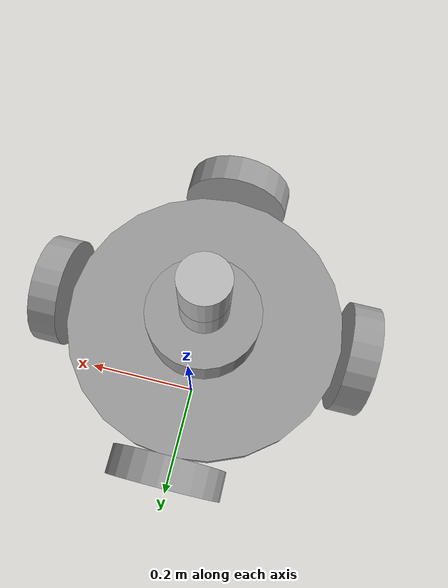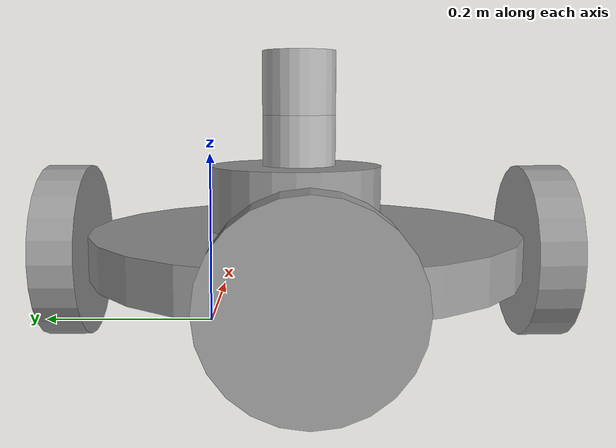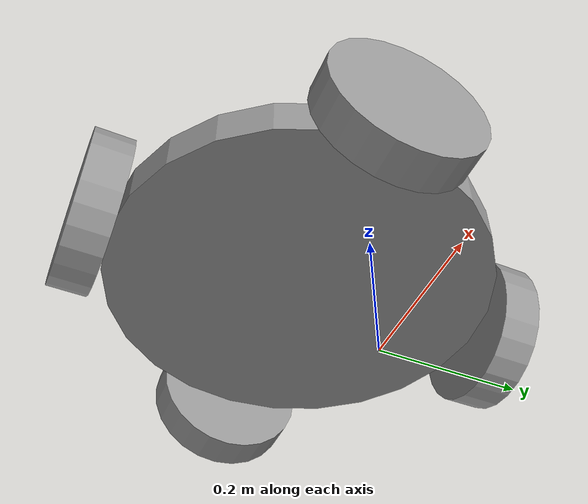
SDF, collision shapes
<?xml version='1.0'?>
<sdf version='1.6'>
  <model name='Platvorm_lidariga'>
    <link name='link_0'>
      <inertial>
        <mass>0.00510459</mass>
        <inertia>
          <ixx>1.987e-05</ixx>
          <ixy>0</ixy>
          <ixz>0</ixz>
          <iyy>1.987e-05</iyy>
          <iyz>0</iyz>
          <izz>2.906e-05</izz>
        </inertia>
        <pose frame=''>0 0 0 0 -0 0</pose>
      </inertial>
      <pose frame=''>0.000146 -0.385825 0.086886 -1.5757 0 0</pose>
      <gravity>1</gravity>
      <self_collide>0</self_collide>
      <kinematic>0</kinematic>
      <enable_wind>0</enable_wind>
      <visual name='visual'>
        <pose frame=''>0 0 0 0 -0 0</pose>
        <geometry>
          <cylinder>
            <radius>0.1</radius>
            <length>0.05</length>
          </cylinder>
        </geometry>
        <material>
          <lighting>1</lighting>
          <script>
            <uri>file://media/materials/scripts/gazebo.material</uri>
            <name>Gazebo/Grey</name>
          </script>
          <shader type='vertex'>
            <normal_map>__default__</normal_map>
          </shader>
          <ambient>0.3 0.3 0.3 1</ambient>
          <diffuse>0.7 0.7 0.7 1</diffuse>
          <specular>0.01 0.01 0.01 1</specular>
          <emissive>0 0 0 1</emissive>
        </material>
        <transparency>0</transparency>
        <cast_shadows>1</cast_shadows>
      </visual>
      <collision name='collision'>
        <laser_retro>0</laser_retro>
        <max_contacts>10</max_contacts>
        <pose frame=''>0 0 0 0 -0 0</pose>
        <geometry>
          <cylinder>
            <radius>0.1</radius>
            <length>0.05</length>
          </cylinder>
        </geometry>
        <surface>
          <friction>
            <ode>
              <mu>1</mu>
              <mu2>1</mu2>
              <fdir1>0 0 0</fdir1>
              <slip1>0</slip1>
              <slip2>0</slip2>
            </ode>
            <torsional>
              <coefficient>1</coefficient>
              <patch_radius>0</patch_radius>
              <surface_radius>0</surface_radius>
              <use_patch_radius>1</use_patch_radius>
              <ode>
                <slip>0</slip>
              </ode>
            </torsional>
          </friction>
          <bounce>
            <restitution_coefficient>0</restitution_coefficient>
            <threshold>1e+06</threshold>
          </bounce>
          <contact>
            <collide_without_contact>0</collide_without_contact>
            <collide_without_contact_bitmask>1</collide_without_contact_bitmask>
            <collide_bitmask>1</collide_bitmask>
            <ode>
              <soft_cfm>0</soft_cfm>
              <soft_erp>0.2</soft_erp>
              <kp>1e+13</kp>
              <kd>1</kd>
              <max_vel>0.01</max_vel>
              <min_depth>0</min_depth>
            </ode>
            <bullet>
              <split_impulse>1</split_impulse>
              <split_impulse_penetration_threshold>-0.01</split_impulse_penetration_threshold>
              <soft_cfm>0</soft_cfm>
              <soft_erp>0.2</soft_erp>
              <kp>1e+13</kp>
              <kd>1</kd>
            </bullet>
          </contact>
        </surface>
      </collision>
    </link>
    <link name='link_0_clone'>
      <inertial>
        <mass>0.00510459</mass>
        <inertia>
          <ixx>1.987e-05</ixx>
          <ixy>0</ixy>
          <ixz>0</ixz>
          <iyy>1.987e-05</iyy>
          <iyz>0</iyz>
          <izz>2.906e-05</izz>
        </inertia>
        <pose frame=''>0 0 0 0 -0 0</pose>
      </inertial>
      <pose frame=''>0.000146 0.164175 0.086886 -1.5757 0 0</pose>
      <gravity>1</gravity>
      <self_collide>0</self_collide>
      <kinematic>0</kinematic>
      <enable_wind>0</enable_wind>
      <visual name='visual'>
        <pose frame=''>0 0 0 0 -0 0</pose>
        <geometry>
          <cylinder>
            <radius>0.1</radius>
            <length>0.05</length>
          </cylinder>
        </geometry>
        <material>
          <lighting>1</lighting>
          <script>
            <uri>file://media/materials/scripts/gazebo.material</uri>
            <name>Gazebo/Grey</name>
          </script>
          <shader type='vertex'>
            <normal_map>__default__</normal_map>
          </shader>
          <ambient>0.3 0.3 0.3 1</ambient>
          <diffuse>0.7 0.7 0.7 1</diffuse>
          <specular>0.01 0.01 0.01 1</specular>
          <emissive>0 0 0 1</emissive>
        </material>
        <transparency>0</transparency>
        <cast_shadows>1</cast_shadows>
      </visual>
      <collision name='collision'>
        <laser_retro>0</laser_retro>
        <max_contacts>10</max_contacts>
        <pose frame=''>0 0 0 0 -0 0</pose>
        <geometry>
          <cylinder>
            <radius>0.1</radius>
            <length>0.05</length>
          </cylinder>
        </geometry>
        <surface>
          <friction>
            <ode>
              <mu>1</mu>
              <mu2>1</mu2>
              <fdir1>0 0 0</fdir1>
              <slip1>0</slip1>
              <slip2>0</slip2>
            </ode>
            <torsional>
              <coefficient>1</coefficient>
              <patch_radius>0</patch_radius>
              <surface_radius>0</surface_radius>
              <use_patch_radius>1</use_patch_radius>
              <ode>
                <slip>0</slip>
              </ode>
            </torsional>
          </friction>
          <bounce>
            <restitution_coefficient>0</restitution_coefficient>
            <threshold>1e+06</threshold>
          </bounce>
          <contact>
            <collide_without_contact>0</collide_without_contact>
            <collide_without_contact_bitmask>1</collide_without_contact_bitmask>
            <collide_bitmask>1</collide_bitmask>
            <ode>
              <soft_cfm>0</soft_cfm>
              <soft_erp>0.2</soft_erp>
              <kp>1e+13</kp>
              <kd>1</kd>
              <max_vel>0.01</max_vel>
              <min_depth>0</min_depth>
            </ode>
            <bullet>
              <split_impulse>1</split_impulse>
              <split_impulse_penetration_threshold>-0.01</split_impulse_penetration_threshold>
              <soft_cfm>0</soft_cfm>
              <soft_erp>0.2</soft_erp>
              <kp>1e+13</kp>
              <kd>1</kd>
            </bullet>
          </contact>
        </surface>
      </collision>
    </link>
    <link name='link_0_clone_0'>
      <inertial>
        <mass>0.00510459</mass>
        <inertia>
          <ixx>1.987e-05</ixx>
          <ixy>0</ixy>
          <ixz>0</ixz>
          <iyy>1.987e-05</iyy>
          <iyz>0</iyz>
          <izz>2.906e-05</izz>
        </inertia>
        <pose frame=''>0 0 0 0 -0 0</pose>
      </inertial>
      <pose frame=''>0.275146 -0.110825 0.086886 -1.5757 -0 1.57</pose>
      <gravity>1</gravity>
      <self_collide>0</self_collide>
      <kinematic>0</kinematic>
      <enable_wind>0</enable_wind>
      <visual name='visual'>
        <pose frame=''>0 0 0 0 -0 0</pose>
        <geometry>
          <cylinder>
            <radius>0.1</radius>
            <length>0.05</length>
          </cylinder>
        </geometry>
        <material>
          <lighting>1</lighting>
          <script>
            <uri>file://media/materials/scripts/gazebo.material</uri>
            <name>Gazebo/Grey</name>
          </script>
          <shader type='vertex'>
            <normal_map>__default__</normal_map>
          </shader>
          <ambient>0.3 0.3 0.3 1</ambient>
          <diffuse>0.7 0.7 0.7 1</diffuse>
          <specular>0.01 0.01 0.01 1</specular>
          <emissive>0 0 0 1</emissive>
        </material>
        <transparency>0</transparency>
        <cast_shadows>1</cast_shadows>
      </visual>
      <collision name='collision'>
        <laser_retro>0</laser_retro>
        <max_contacts>10</max_contacts>
        <pose frame=''>0 0 0 0 -0 0</pose>
        <geometry>
          <cylinder>
            <radius>0.1</radius>
            <length>0.05</length>
          </cylinder>
        </geometry>
        <surface>
          <friction>
            <ode>
              <mu>1</mu>
              <mu2>1</mu2>
              <fdir1>0 0 0</fdir1>
              <slip1>0</slip1>
              <slip2>0</slip2>
            </ode>
            <torsional>
              <coefficient>1</coefficient>
              <patch_radius>0</patch_radius>
              <surface_radius>0</surface_radius>
              <use_patch_radius>1</use_patch_radius>
              <ode>
                <slip>0</slip>
              </ode>
            </torsional>
          </friction>
          <bounce>
            <restitution_coefficient>0</restitution_coefficient>
            <threshold>1e+06</threshold>
          </bounce>
          <contact>
            <collide_without_contact>0</collide_without_contact>
            <collide_without_contact_bitmask>1</collide_without_contact_bitmask>
            <collide_bitmask>1</collide_bitmask>
            <ode>
              <soft_cfm>0</soft_cfm>
              <soft_erp>0.2</soft_erp>
              <kp>1e+13</kp>
              <kd>1</kd>
              <max_vel>0.01</max_vel>
              <min_depth>0</min_depth>
            </ode>
            <bullet>
              <split_impulse>1</split_impulse>
              <split_impulse_penetration_threshold>-0.01</split_impulse_penetration_threshold>
              <soft_cfm>0</soft_cfm>
              <soft_erp>0.2</soft_erp>
              <kp>1e+13</kp>
              <kd>1</kd>
            </bullet>
          </contact>
        </surface>
      </collision>
    </link>
    <link name='link_0_clone_0_clone'>
      <inertial>
        <mass>0.00510459</mass>
        <inertia>
          <ixx>1.987e-05</ixx>
          <ixy>0</ixy>
          <ixz>0</ixz>
          <iyy>1.987e-05</iyy>
          <iyz>0</iyz>
          <izz>2.906e-05</izz>
        </inertia>
        <pose frame=''>0 0 0 0 -0 0</pose>
      </inertial>
      <pose frame=''>-0.274854 -0.110825 0.086886 -1.5757 -0 1.57</pose>
      <gravity>1</gravity>
      <self_collide>0</self_collide>
      <kinematic>0</kinematic>
      <enable_wind>0</enable_wind>
      <visual name='visual'>
        <pose frame=''>0 0 0 0 -0 0</pose>
        <geometry>
          <cylinder>
            <radius>0.1</radius>
            <length>0.05</length>
          </cylinder>
        </geometry>
        <material>
          <lighting>1</lighting>
          <script>
            <uri>file://media/materials/scripts/gazebo.material</uri>
            <name>Gazebo/Grey</name>
          </script>
          <shader type='vertex'>
            <normal_map>__default__</normal_map>
          </shader>
          <ambient>0.3 0.3 0.3 1</ambient>
          <diffuse>0.7 0.7 0.7 1</diffuse>
          <specular>0.01 0.01 0.01 1</specular>
          <emissive>0 0 0 1</emissive>
        </material>
        <transparency>0</transparency>
        <cast_shadows>1</cast_shadows>
      </visual>
      <collision name='collision'>
        <laser_retro>0</laser_retro>
        <max_contacts>10</max_contacts>
        <pose frame=''>0 0 0 0 -0 0</pose>
        <geometry>
          <cylinder>
            <radius>0.1</radius>
            <length>0.05</length>
          </cylinder>
        </geometry>
        <surface>
          <friction>
            <ode>
              <mu>1</mu>
              <mu2>1</mu2>
              <fdir1>0 0 0</fdir1>
              <slip1>0</slip1>
              <slip2>0</slip2>
            </ode>
            <torsional>
              <coefficient>1</coefficient>
              <patch_radius>0</patch_radius>
              <surface_radius>0</surface_radius>
              <use_patch_radius>1</use_patch_radius>
              <ode>
                <slip>0</slip>
              </ode>
            </torsional>
          </friction>
          <bounce>
            <restitution_coefficient>0</restitution_coefficient>
            <threshold>1e+06</threshold>
          </bounce>
          <contact>
            <collide_without_contact>0</collide_without_contact>
            <collide_without_contact_bitmask>1</collide_without_contact_bitmask>
            <collide_bitmask>1</collide_bitmask>
            <ode>
              <soft_cfm>0</soft_cfm>
              <soft_erp>0.2</soft_erp>
              <kp>1e+13</kp>
              <kd>1</kd>
              <max_vel>0.01</max_vel>
              <min_depth>0</min_depth>
            </ode>
            <bullet>
              <split_impulse>1</split_impulse>
              <split_impulse_penetration_threshold>-0.01</split_impulse_penetration_threshold>
              <soft_cfm>0</soft_cfm>
              <soft_erp>0.2</soft_erp>
              <kp>1e+13</kp>
              <kd>1</kd>
            </bullet>
          </contact>
        </surface>
      </collision>
    </link>
    <link name='link_3'>
      <inertial>
        <mass>0.0302723</mass>
        <inertia>
          <ixx>0.00065661</ixx>
          <ixy>0</ixy>
          <ixz>0</ixz>
          <iyy>0.00065661</iyy>
          <iyz>0</iyz>
          <izz>0.00127232</izz>
        </inertia>
        <pose frame=''>0 0 0 0 -0 0</pose>
      </inertial>
      <pose frame=''>0.000146 -0.110825 0.086886 0 -0 0</pose>
      <gravity>1</gravity>
      <self_collide>0</self_collide>
      <kinematic>0</kinematic>
      <enable_wind>0</enable_wind>
      <visual name='visual'>
        <pose frame=''>0 0 0 0 -0 0</pose>
        <geometry>
          <cylinder>
            <radius>0.25</radius>
            <length>0.05</length>
          </cylinder>
        </geometry>
        <material>
          <lighting>1</lighting>
          <script>
            <uri>file://media/materials/scripts/gazebo.material</uri>
            <name>Gazebo/Grey</name>
          </script>
          <shader type='vertex'>
            <normal_map>__default__</normal_map>
          </shader>
          <ambient>0.3 0.3 0.3 1</ambient>
          <diffuse>0.7 0.7 0.7 1</diffuse>
          <specular>0.01 0.01 0.01 1</specular>
          <emissive>0 0 0 1</emissive>
        </material>
        <transparency>0</transparency>
        <cast_shadows>1</cast_shadows>
      </visual>
      <collision name='collision'>
        <laser_retro>0</laser_retro>
        <max_contacts>10</max_contacts>
        <pose frame=''>0 0 0 0 -0 0</pose>
        <geometry>
          <cylinder>
            <radius>0.25</radius>
            <length>0.05</length>
          </cylinder>
        </geometry>
        <surface>
          <friction>
            <ode>
              <mu>1</mu>
              <mu2>1</mu2>
              <fdir1>0 0 0</fdir1>
              <slip1>0</slip1>
              <slip2>0</slip2>
            </ode>
            <torsional>
              <coefficient>1</coefficient>
              <patch_radius>0</patch_radius>
              <surface_radius>0</surface_radius>
              <use_patch_radius>1</use_patch_radius>
              <ode>
                <slip>0</slip>
              </ode>
            </torsional>
          </friction>
          <bounce>
            <restitution_coefficient>0</restitution_coefficient>
            <threshold>1e+06</threshold>
          </bounce>
          <contact>
            <collide_without_contact>0</collide_without_contact>
            <collide_without_contact_bitmask>1</collide_without_contact_bitmask>
            <collide_bitmask>1</collide_bitmask>
            <ode>
              <soft_cfm>0</soft_cfm>
              <soft_erp>0.2</soft_erp>
              <kp>1e+13</kp>
              <kd>1</kd>
              <max_vel>0.01</max_vel>
              <min_depth>0</min_depth>
            </ode>
            <bullet>
              <split_impulse>1</split_impulse>
              <split_impulse_penetration_threshold>-0.01</split_impulse_penetration_threshold>
              <soft_cfm>0</soft_cfm>
              <soft_erp>0.2</soft_erp>
              <kp>1e+13</kp>
              <kd>1</kd>
            </bullet>
          </contact>
        </surface>
      </collision>
    </link>
    <link name='link_5'>
      <inertial>
        <mass>0.00271088</mass>
        <inertia>
          <ixx>6.86e-06</ixx>
          <ixy>0</ixy>
          <ixz>0</ixz>
          <iyy>6.86e-06</iyy>
          <iyz>0</iyz>
          <izz>8.87e-06</izz>
        </inertia>
        <pose frame=''>0 0 0 0 -0 0</pose>
      </inertial>
      <pose frame=''>0.000146 -0.100688 0.136886 0 -0 0</pose>
      <gravity>1</gravity>
      <self_collide>0</self_collide>
      <kinematic>0</kinematic>
      <enable_wind>0</enable_wind>
      <visual name='visual'>
        <pose frame=''>0 0 0 0 -0 0</pose>
        <geometry>
          <cylinder>
            <radius>0.1</radius>
            <length>0.1</length>
          </cylinder>
        </geometry>
        <material>
          <lighting>1</lighting>
          <script>
            <uri>file://media/materials/scripts/gazebo.material</uri>
            <name>Gazebo/Grey</name>
          </script>
          <shader type='vertex'>
            <normal_map>__default__</normal_map>
          </shader>
          <ambient>0.3 0.3 0.3 1</ambient>
          <diffuse>0.7 0.7 0.7 1</diffuse>
          <specular>0.01 0.01 0.01 1</specular>
          <emissive>0 0 0 1</emissive>
        </material>
        <transparency>0</transparency>
        <cast_shadows>1</cast_shadows>
      </visual>
      <collision name='collision'>
        <laser_retro>0</laser_retro>
        <max_contacts>10</max_contacts>
        <pose frame=''>0 0 0 0 -0 0</pose>
        <geometry>
          <cylinder>
            <radius>0.1</radius>
            <length>0.1</length>
          </cylinder>
        </geometry>
        <surface>
          <friction>
            <ode>
              <mu>1</mu>
              <mu2>1</mu2>
              <fdir1>0 0 0</fdir1>
              <slip1>0</slip1>
              <slip2>0</slip2>
            </ode>
            <torsional>
              <coefficient>1</coefficient>
              <patch_radius>0</patch_radius>
              <surface_radius>0</surface_radius>
              <use_patch_radius>1</use_patch_radius>
              <ode>
                <slip>0</slip>
              </ode>
            </torsional>
          </friction>
          <bounce>
            <restitution_coefficient>0</restitution_coefficient>
            <threshold>1e+06</threshold>
          </bounce>
          <contact>
            <collide_without_contact>0</collide_without_contact>
            <collide_without_contact_bitmask>1</collide_without_contact_bitmask>
            <collide_bitmask>1</collide_bitmask>
            <ode>
              <soft_cfm>0</soft_cfm>
              <soft_erp>0.2</soft_erp>
              <kp>1e+13</kp>
              <kd>1</kd>
              <max_vel>0.01</max_vel>
              <min_depth>0</min_depth>
            </ode>
            <bullet>
              <split_impulse>1</split_impulse>
              <split_impulse_penetration_threshold>-0.01</split_impulse_penetration_threshold>
              <soft_cfm>0</soft_cfm>
              <soft_erp>0.2</soft_erp>
              <kp>1e+13</kp>
              <kd>1</kd>
            </bullet>
          </contact>
        </surface>
      </collision>
    </link>
    <model name='velodyne_hdl-32'>
      <link name='base'>
        <pose frame=''>0 0 0.029335 0 -0 0</pose>
        <inertial>
          <mass>1.2</mass>
          <inertia>
            <ixx>0.00108747</ixx>
            <iyy>0.00108747</iyy>
            <izz>0.00109244</izz>
            <ixy>0</ixy>
            <ixz>0</ixz>
            <iyz>0</iyz>
          </inertia>
        </inertial>
        <collision name='base_collision'>
          <geometry>
            <cylinder>
              <radius>0.04267</radius>
              <length>0.05867</length>
            </cylinder>
          </geometry>
        </collision>
        <visual name='base_visual'>
          <pose frame=''>0 0 -0.029335 0 -0 0</pose>
          <geometry>
            <mesh>
              <uri>model://velodyne_hdl32/meshes/velodyne_base.dae</uri>
            </mesh>
          </geometry>
        </visual>
      </link>
      <link name='top'>
        <pose frame=''>0 0 0.095455 0 -0 0</pose>
        <sensor name='sensor' type='ray'>
          <pose frame=''>0 0 -0.004645 1.5707 -0 0</pose>
          <visualize>1</visualize>
          <ray>
            <noise>
              <type>gaussian</type>
              <mean>0</mean>
              <stddev>0.02</stddev>
            </noise>
            <scan>
              <horizontal>
                <samples>32</samples>
                <resolution>1</resolution>
                <min_angle>-0.535292</min_angle>
                <max_angle>0.186227</max_angle>
              </horizontal>
            </scan>
            <range>
              <min>0.05</min>
              <max>70</max>
              <resolution>0.02</resolution>
            </range>
          </ray>
        </sensor>
        <inertial>
          <mass>0.1</mass>
          <inertia>
            <ixx>9.0623e-05</ixx>
            <iyy>9.0623e-05</iyy>
            <izz>9.1036e-05</izz>
            <ixy>0</ixy>
            <ixz>0</ixz>
            <iyz>0</iyz>
          </inertia>
        </inertial>
        <collision name='top_collision'>
          <geometry>
            <cylinder>
              <radius>0.04267</radius>
              <length>0.07357</length>
            </cylinder>
          </geometry>
        </collision>
        <visual name='top_visual'>
          <pose frame=''>0 0 -0.037679 0 -0 1.5707</pose>
          <geometry>
            <mesh>
              <uri>model://velodyne_hdl32/meshes/velodyne_top.dae</uri>
            </mesh>
          </geometry>
        </visual>
      </link>
      <joint name='joint' type='revolute'>
        <pose frame=''>0 0 -0.036785 0 -0 0</pose>
        <parent>base</parent>
        <child>top</child>
        <axis>
          <xyz>0 0 1</xyz>
          <limit>
            <lower>-1e+16</lower>
            <upper>1e+16</upper>
          </limit>
          <use_parent_model_frame>0</use_parent_model_frame>
        </axis>
      </joint>
      <pose frame=''>-0.000874 -0.104321 0.187018 0 -0 0</pose>
    </model>
    <joint name='link_3_JOINT_0' type='revolute'>
      <parent>link_3</parent>
      <child>link_0</child>
      <pose frame=''>0 0 0 0 -0 0</pose>
      <axis>
        <xyz>0 0 1</xyz>
        <use_parent_model_frame>0</use_parent_model_frame>
        <limit>
          <lower>-1.79769e+308</lower>
          <upper>1.79769e+308</upper>
          <effort>-1</effort>
          <velocity>-1</velocity>
        </limit>
        <dynamics>
          <spring_reference>0</spring_reference>
          <spring_stiffness>0</spring_stiffness>
          <damping>0</damping>
        </dynamics>
      </axis>
      <physics>
        <ode>
          <limit>
            <cfm>0</cfm>
            <erp>0.2</erp>
          </limit>
          <suspension>
            <cfm>0</cfm>
            <erp>0.2</erp>
          </suspension>
        </ode>
      </physics>
    </joint>
    <joint name='link_3_JOINT_1' type='revolute'>
      <parent>link_3</parent>
      <child>link_0_clone</child>
      <pose frame=''>0 0 0 0 -0 0</pose>
      <axis>
        <xyz>0 0 1</xyz>
        <use_parent_model_frame>0</use_parent_model_frame>
        <limit>
          <lower>-1.79769e+308</lower>
          <upper>1.79769e+308</upper>
          <effort>-1</effort>
          <velocity>-1</velocity>
        </limit>
        <dynamics>
          <spring_reference>0</spring_reference>
          <spring_stiffness>0</spring_stiffness>
          <damping>0</damping>
        </dynamics>
      </axis>
      <physics>
        <ode>
          <limit>
            <cfm>0</cfm>
            <erp>0.2</erp>
          </limit>
          <suspension>
            <cfm>0</cfm>
            <erp>0.2</erp>
          </suspension>
        </ode>
      </physics>
    </joint>
    <joint name='link_3_JOINT_2' type='revolute'>
      <parent>link_3</parent>
      <child>link_0_clone_0_clone</child>
      <pose frame=''>0 0 0 0 -0 0</pose>
      <axis>
        <xyz>0 0 1</xyz>
        <use_parent_model_frame>0</use_parent_model_frame>
        <limit>
          <lower>-1.79769e+308</lower>
          <upper>1.79769e+308</upper>
          <effort>-1</effort>
          <velocity>-1</velocity>
        </limit>
        <dynamics>
          <spring_reference>0</spring_reference>
          <spring_stiffness>0</spring_stiffness>
          <damping>0</damping>
        </dynamics>
      </axis>
      <physics>
        <ode>
          <limit>
            <cfm>0</cfm>
            <erp>0.2</erp>
          </limit>
          <suspension>
            <cfm>0</cfm>
            <erp>0.2</erp>
          </suspension>
        </ode>
      </physics>
    </joint>
    <joint name='link_3_JOINT_3' type='revolute'>
      <parent>link_3</parent>
      <child>link_0_clone_0</child>
      <pose frame=''>0 0 0 0 -0 0</pose>
      <axis>
        <xyz>0 0 1</xyz>
        <use_parent_model_frame>0</use_parent_model_frame>
        <limit>
          <lower>-1.79769e+308</lower>
          <upper>1.79769e+308</upper>
          <effort>-1</effort>
          <velocity>-1</velocity>
        </limit>
        <dynamics>
          <spring_reference>0</spring_reference>
          <spring_stiffness>0</spring_stiffness>
          <damping>0</damping>
        </dynamics>
      </axis>
      <physics>
        <ode>
          <limit>
            <cfm>0</cfm>
            <erp>0.2</erp>
          </limit>
          <suspension>
            <cfm>0</cfm>
            <erp>0.2</erp>
          </suspension>
        </ode>
      </physics>
    </joint>
    <joint name='link_3_JOINT_4' type='fixed'>
      <parent>link_3</parent>
      <child>link_5</child>
      <pose frame=''>0 0 0 0 -0 0</pose>
      <physics>
        <ode>
          <limit>
            <cfm>0</cfm>
            <erp>0.2</erp>
          </limit>
          <suspension>
            <cfm>0</cfm>
            <erp>0.2</erp>
          </suspension>
        </ode>
      </physics>
    </joint>
    <joint name='link_5_JOINT_5' type='fixed'>
      <parent>link_5</parent>
      <child>velodyne_hdl-32::base</child>
      <pose frame=''>0 0 0 0 -0 0</pose>
      <physics>
        <ode>
          <limit>
            <cfm>0</cfm>
            <erp>0.2</erp>
          </limit>
          <suspension>
            <cfm>0</cfm>
            <erp>0.2</erp>
          </suspension>
        </ode>
      </physics>
    </joint>
    <static>0</static>
    <allow_auto_disable>1</allow_auto_disable>
  </model>
</sdf>
